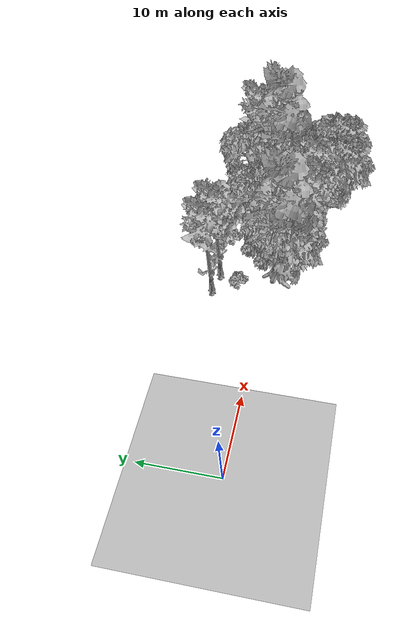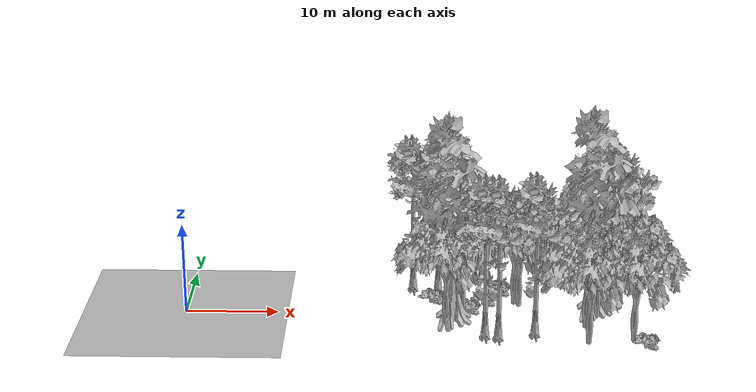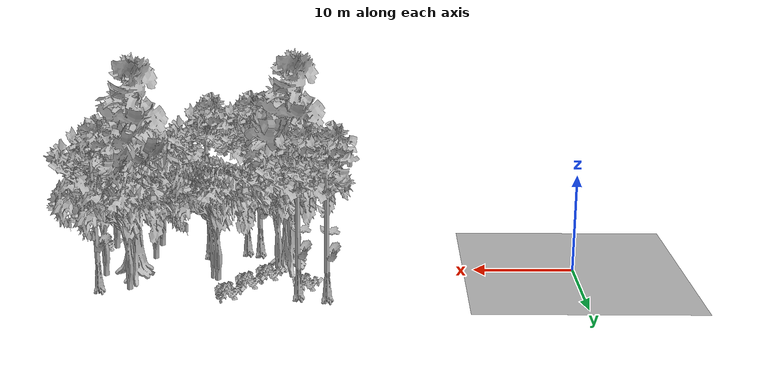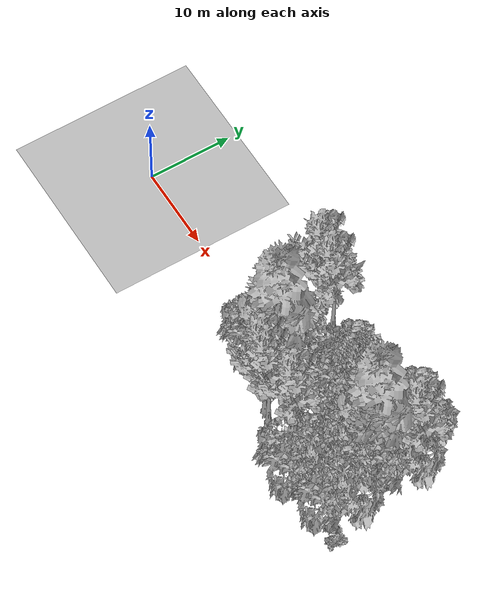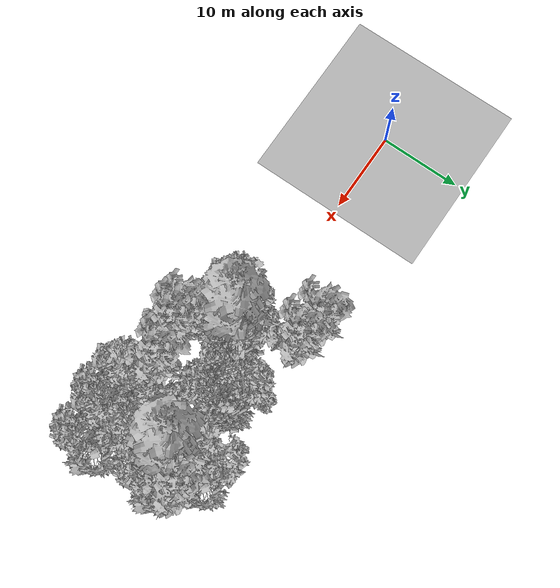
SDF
<sdf version="1.7">
 <world name="default">
  <model name="ground_plane">
   <static>1</static>
   <link name="link">
    <collision name="collision">
     <geometry><plane><normal>0 0 1</normal><size>100 100</size></plane></geometry>
     <surface><contact><ode><min_depth>0.01</min_depth><max_vel>0</max_vel></ode></contact></surface>
    </collision>
    <visual name="grass">
     <cast_shadows>0</cast_shadows>
     <geometry>
      <mesh>
       <scale>0.41000000000000003 0.41000000000000003 0.1</scale>
       <uri>file://grass_plane/meshes/grass_plane.dae</uri>
      </mesh>
     </geometry>
    </visual>
   </link>
  </model>
  <model name="Tree 9">
   <static>1</static>
   <pose>29.69096235954777 -0.456956809424355 0 1.57079 -0 0</pose>
   <link name="link">
    <collision name="collision">
     <geometry><mesh><scale>5 5 5</scale><uri>model://tree_2/meshes/tree_2.obj</uri></mesh></geometry>
    </collision>
    <visual name="visual">
     <geometry><mesh><scale>5 5 5</scale><uri>model://tree_2/meshes/tree_2.obj</uri></mesh></geometry>
    </visual>
   </link>
  </model>
  <model name="Tree 17">
   <static>1</static>
   <pose>33.42079491599917 -5.492756090774165 0 1.57079 -0 0</pose>
   <link name="link">
    <collision name="collision">
     <geometry><mesh><scale>5 5 5</scale><uri>model://tree_9/meshes/tree_9.obj</uri></mesh></geometry>
    </collision>
    <visual name="visual">
     <geometry><mesh><scale>5 5 5</scale><uri>model://tree_9/meshes/tree_9.obj</uri></mesh></geometry>
    </visual>
   </link>
  </model>
  <model name="Tree 26">
   <static>1</static>
   <pose>44.06824998179462 -0.5448657894834099 0 1.57079 -0 0</pose>
   <link name="link">
    <collision name="collision">
     <geometry><mesh><scale>5 5 5</scale><uri>model://tree_2/meshes/tree_2.obj</uri></mesh></geometry>
    </collision>
    <visual name="visual">
     <geometry><mesh><scale>5 5 5</scale><uri>model://tree_2/meshes/tree_2.obj</uri></mesh></geometry>
    </visual>
   </link>
  </model>
  <model name="Tree 48">
   <static>1</static>
   <pose>43.61871249021824 5.252878970425115 0 1.57079 -0 0</pose>
   <link name="link">
    <collision name="collision">
     <geometry><mesh><scale>5 5 5</scale><uri>model://tree_2/meshes/tree_2.obj</uri></mesh></geometry>
    </collision>
    <visual name="visual">
     <geometry><mesh><scale>5 5 5</scale><uri>model://tree_2/meshes/tree_2.obj</uri></mesh></geometry>
    </visual>
   </link>
  </model>
  <model name="Tree 51">
   <static>1</static>
   <pose>43.87346590486044 1.1403603794704367 0 1.57079 -0 0</pose>
   <link name="link">
    <collision name="collision">
     <geometry><mesh><scale>5 5 5</scale><uri>model://tree_4/meshes/tree_4.obj</uri></mesh></geometry>
    </collision>
    <visual name="visual">
     <geometry><mesh><scale>5 5 5</scale><uri>model://tree_4/meshes/tree_4.obj</uri></mesh></geometry>
    </visual>
   </link>
  </model>
  <model name="Tree 66">
   <static>1</static>
   <pose>24.513276819011793 7.012146546616137 0 1.57079 -0 0</pose>
   <link name="link">
    <collision name="collision">
     <geometry><mesh><scale>5 5 5</scale><uri>model://tree_9/meshes/tree_9.obj</uri></mesh></geometry>
    </collision>
    <visual name="visual">
     <geometry><mesh><scale>5 5 5</scale><uri>model://tree_9/meshes/tree_9.obj</uri></mesh></geometry>
    </visual>
   </link>
  </model>
  <model name="Tree 81">
   <static>1</static>
   <pose>47.324824428638195 -6.18817914970051 0 1.57079 -0 0</pose>
   <link name="link">
    <collision name="collision">
     <geometry><mesh><scale>5 5 5</scale><uri>model://tree_2/meshes/tree_2.obj</uri></mesh></geometry>
    </collision>
    <visual name="visual">
     <geometry><mesh><scale>5 5 5</scale><uri>model://tree_2/meshes/tree_2.obj</uri></mesh></geometry>
    </visual>
   </link>
  </model>
  <model name="Tree 106">
   <static>1</static>
   <pose>35.371201495172826 2.7554698268493 0 1.57079 -0 0</pose>
   <link name="link">
    <collision name="collision">
     <geometry><mesh><scale>5 5 5</scale><uri>model://tree_2/meshes/tree_2.obj</uri></mesh></geometry>
    </collision>
    <visual name="visual">
     <geometry><mesh><scale>5 5 5</scale><uri>model://tree_2/meshes/tree_2.obj</uri></mesh></geometry>
    </visual>
   </link>
  </model>
  <model name="Tree 155">
   <static>1</static>
   <pose>28.610025527224806 -1.3845964453533597 0 1.57079 -0 0</pose>
   <link name="link">
    <collision name="collision">
     <geometry><mesh><scale>5 5 5</scale><uri>model://tree_4/meshes/tree_4.obj</uri></mesh></geometry>
    </collision>
    <visual name="visual">
     <geometry><mesh><scale>5 5 5</scale><uri>model://tree_4/meshes/tree_4.obj</uri></mesh></geometry>
    </visual>
   </link>
  </model>
  <model name="Tree 163">
   <static>1</static>
   <pose>35.86347208557848 2.190947309715021 0 1.57079 -0 0</pose>
   <link name="link">
    <collision name="collision">
     <geometry><mesh><scale>5 5 5</scale><uri>model://tree_2/meshes/tree_2.obj</uri></mesh></geometry>
    </collision>
    <visual name="visual">
     <geometry><mesh><scale>5 5 5</scale><uri>model://tree_2/meshes/tree_2.obj</uri></mesh></geometry>
    </visual>
   </link>
  </model>
  <model name="Tree 188">
   <static>1</static>
   <pose>42.6067702807953 -3.1192963263607325 0 1.57079 -0 0</pose>
   <link name="link">
    <collision name="collision">
     <geometry><mesh><scale>5 5 5</scale><uri>model://tree_2/meshes/tree_2.obj</uri></mesh></geometry>
    </collision>
    <visual name="visual">
     <geometry><mesh><scale>5 5 5</scale><uri>model://tree_2/meshes/tree_2.obj</uri></mesh></geometry>
    </visual>
   </link>
  </model>
  <model name="Tree 198">
   <static>1</static>
   <pose>46.71750992874334 1.6706220637657836 0 1.57079 -0 0</pose>
   <link name="link">
    <collision name="collision">
     <geometry><mesh><scale>5 5 5</scale><uri>model://tree_2/meshes/tree_2.obj</uri></mesh></geometry>
    </collision>
    <visual name="visual">
     <geometry><mesh><scale>5 5 5</scale><uri>model://tree_2/meshes/tree_2.obj</uri></mesh></geometry>
    </visual>
   </link>
  </model>
  <model name="Tree 212">
   <static>1</static>
   <pose>27.29322065400727 6.4888466099948445 0 1.57079 -0 0</pose>
   <link name="link">
    <collision name="collision">
     <geometry><mesh><scale>5 5 5</scale><uri>model://tree_9/meshes/tree_9.obj</uri></mesh></geometry>
    </collision>
    <visual name="visual">
     <geometry><mesh><scale>5 5 5</scale><uri>model://tree_9/meshes/tree_9.obj</uri></mesh></geometry>
    </visual>
   </link>
  </model>
  <model name="Tree 261">
   <static>1</static>
   <pose>37.30157970305224 -4.556516737093197 0 1.57079 -0 0</pose>
   <link name="link">
    <collision name="collision">
     <geometry><mesh><scale>5 5 5</scale><uri>model://tree_9/meshes/tree_9.obj</uri></mesh></geometry>
    </collision>
    <visual name="visual">
     <geometry><mesh><scale>5 5 5</scale><uri>model://tree_9/meshes/tree_9.obj</uri></mesh></geometry>
    </visual>
   </link>
  </model>
  <model name="Tree 318">
   <static>1</static>
   <pose>27.903221223080592 -2.343932266564167 0 1.57079 -0 0</pose>
   <link name="link">
    <collision name="collision">
     <geometry><mesh><scale>5 5 5</scale><uri>model://tree_2/meshes/tree_2.obj</uri></mesh></geometry>
    </collision>
    <visual name="visual">
     <geometry><mesh><scale>5 5 5</scale><uri>model://tree_2/meshes/tree_2.obj</uri></mesh></geometry>
    </visual>
   </link>
  </model>
  <model name="Tree 329">
   <static>1</static>
   <pose>42.61146564563518 -6.9849470683185615 0 1.57079 -0 0</pose>
   <link name="link">
    <collision name="collision">
     <geometry><mesh><scale>5 5 5</scale><uri>model://tree_2/meshes/tree_2.obj</uri></mesh></geometry>
    </collision>
    <visual name="visual">
     <geometry><mesh><scale>5 5 5</scale><uri>model://tree_2/meshes/tree_2.obj</uri></mesh></geometry>
    </visual>
   </link>
  </model>
  <model name="Tree 359">
   <static>1</static>
   <pose>32.04495781991564 -5.09936473506437 0 1.57079 -0 0</pose>
   <link name="link">
    <collision name="collision">
     <geometry><mesh><scale>5 5 5</scale><uri>model://tree_9/meshes/tree_9.obj</uri></mesh></geometry>
    </collision>
    <visual name="visual">
     <geometry><mesh><scale>5 5 5</scale><uri>model://tree_9/meshes/tree_9.obj</uri></mesh></geometry>
    </visual>
   </link>
  </model>
  <model name="Tree 472">
   <static>1</static>
   <pose>46.86420035739111 4.754595523509508 0 1.57079 -0 0</pose>
   <link name="link">
    <collision name="collision">
     <geometry><mesh><scale>5 5 5</scale><uri>model://tree_9/meshes/tree_9.obj</uri></mesh></geometry>
    </collision>
    <visual name="visual">
     <geometry><mesh><scale>5 5 5</scale><uri>model://tree_9/meshes/tree_9.obj</uri></mesh></geometry>
    </visual>
   </link>
  </model>
  <model name="Bush 30">
   <static>1</static>
   <pose>26.639368960330827 3.8833281541972298 0 1.57079 -0 0</pose>
   <link name="link">
    <collision name="collision">
     <geometry><mesh><scale>2 2 2</scale><uri>model://bush_2/meshes/bush_2.obj</uri></mesh></geometry>
    </collision>
    <visual name="visual">
     <geometry><mesh><scale>5 5 5</scale><uri>model://bush_2/meshes/bush_2.obj</uri></mesh></geometry>
    </visual>
   </link>
  </model>
  <model name="Bush 42">
   <static>1</static>
   <pose>32.330481831139096 3.4406180346211883 0 1.57079 -0 0</pose>
   <link name="link">
    <collision name="collision">
     <geometry><mesh><scale>2 2 2</scale><uri>model://bush_2/meshes/bush_2.obj</uri></mesh></geometry>
    </collision>
    <visual name="visual">
     <geometry><mesh><scale>5 5 5</scale><uri>model://bush_2/meshes/bush_2.obj</uri></mesh></geometry>
    </visual>
   </link>
  </model>
  <model name="Bush 78">
   <static>1</static>
   <pose>30.51057957580045 1.2775102854659224 0 1.57079 -0 0</pose>
   <link name="link">
    <collision name="collision">
     <geometry><mesh><scale>2 2 2</scale><uri>model://bush_2/meshes/bush_2.obj</uri></mesh></geometry>
    </collision>
    <visual name="visual">
     <geometry><mesh><scale>5 5 5</scale><uri>model://bush_2/meshes/bush_2.obj</uri></mesh></geometry>
    </visual>
   </link>
  </model>
  <model name="Bush 114">
   <static>1</static>
   <pose>34.00206459514524 6.131338445491039 0 1.57079 -0 0</pose>
   <link name="link">
    <collision name="collision">
     <geometry><mesh><scale>2 2 2</scale><uri>model://bush_2/meshes/bush_2.obj</uri></mesh></geometry>
    </collision>
    <visual name="visual">
     <geometry><mesh><scale>5 5 5</scale><uri>model://bush_2/meshes/bush_2.obj</uri></mesh></geometry>
    </visual>
   </link>
  </model>
  <model name="Bush 121">
   <static>1</static>
   <pose>48.688430667666566 -6.941599530583964 0 1.57079 -0 0</pose>
   <link name="link">
    <collision name="collision">
     <geometry><mesh><scale>2 2 2</scale><uri>model://bush_2/meshes/bush_2.obj</uri></mesh></geometry>
    </collision>
    <visual name="visual">
     <geometry><mesh><scale>5 5 5</scale><uri>model://bush_2/meshes/bush_2.obj</uri></mesh></geometry>
    </visual>
   </link>
  </model>
 </world>
</sdf>
